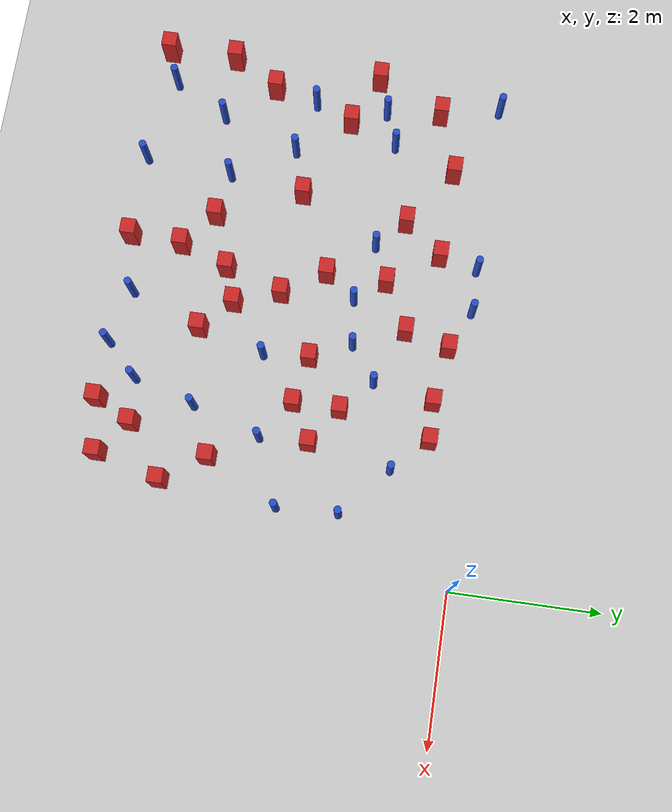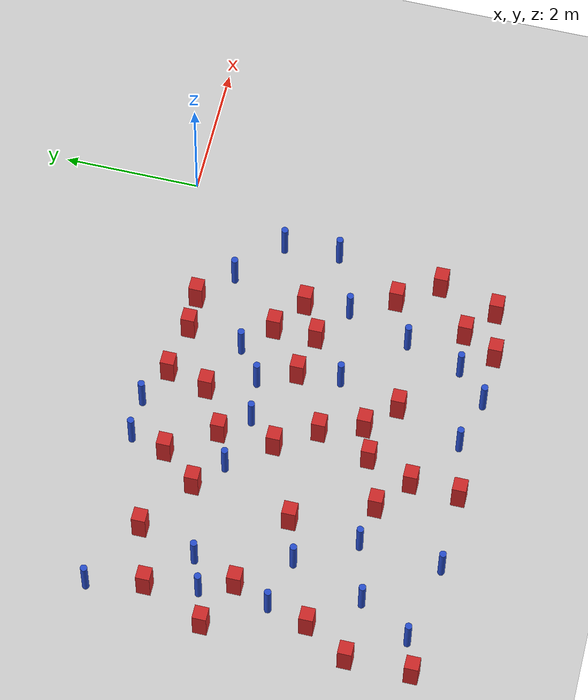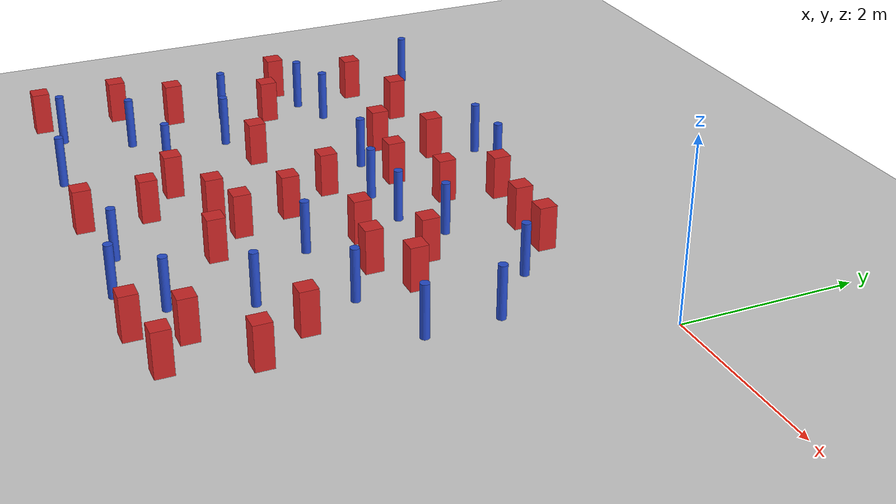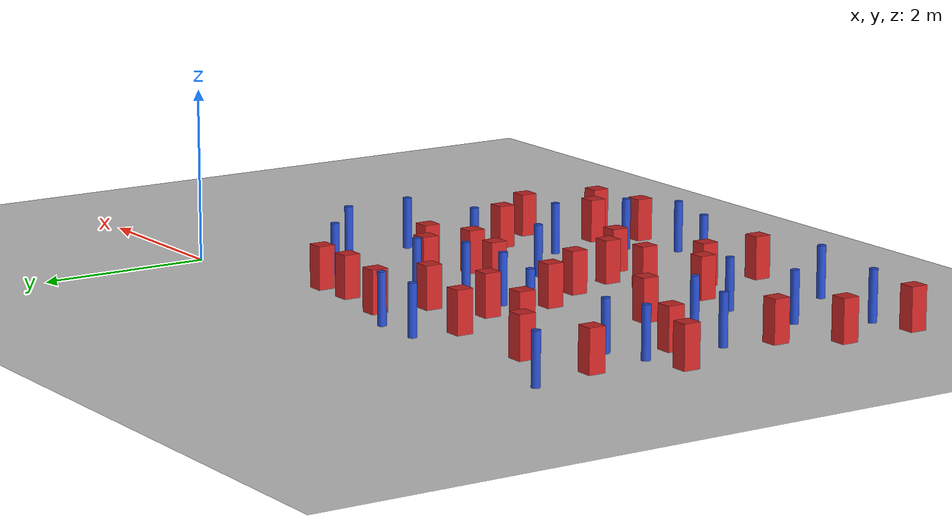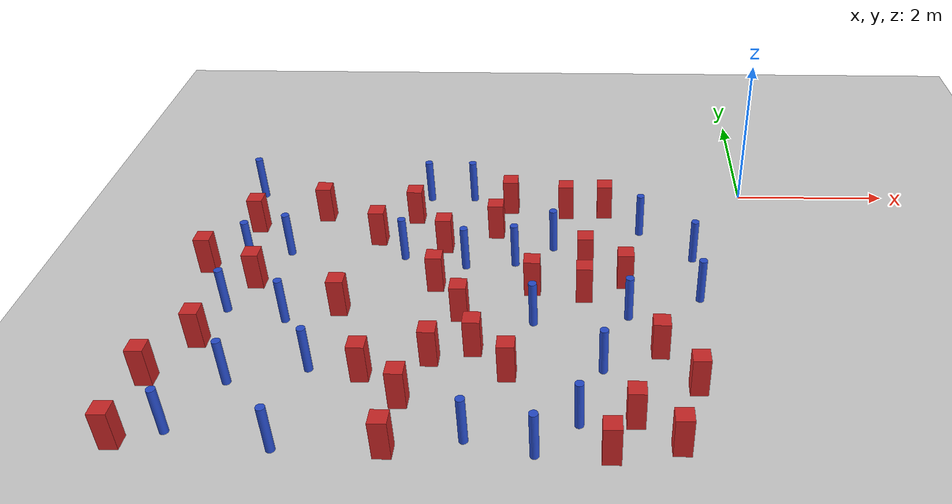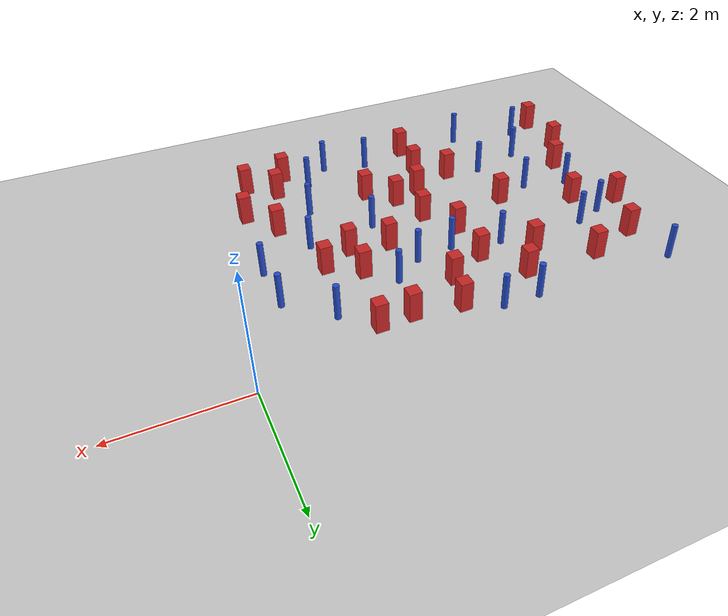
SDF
<sdf version="1.6">
 <world name="default">
  <model name="ground_plane">
   <static>1</static>
   <link name="link">
    <collision name="collision">
     <geometry><plane><normal>0 0 1</normal><size>100 100</size></plane></geometry>
     <surface><friction><ode><mu>100</mu><mu2>50</mu2></ode></friction></surface>
    </collision>
    <visual name="visual">
     <cast_shadows>0</cast_shadows>
     <geometry><plane><normal>0 0 1</normal><size>100 100</size></plane></geometry>
     <material>
      <ambient>1.0 1.0 1.0 1.0</ambient>
      <diffuse>0.8 0.8 0.8 1.0</diffuse>
      <specular>0.01 0.01 0.01 1.000000</specular>
     </material>
    </visual>
   </link>
  </model>
  <model name="pole_obstacle7">
   <static>true</static>
   <pose>-6.45998236298 -2.63384797095 7.38925637345e-09 -8.47170692798e-08 1.24976764937e-08 -1.74513093023e-07</pose>
   <link name="link">
    <pose>0 0 0.3 0 -0 0</pose>
    <inertial>
     <mass>1</mass>
     <inertia><ixx>0.145833</ixx><ixy>0</ixy><ixz>0</ixz><iyy>0.145833</iyy><iyz>0</iyz><izz>0.125</izz></inertia>
    </inertial>
    <collision name="collision">
     <geometry><cylinder><radius>0.05</radius><length>.6</length></cylinder></geometry>
    </collision>
    <visual name="visual">
     <geometry><cylinder><radius>0.05</radius><length>.6</length></cylinder></geometry>
     <material>
      <script><name>Gazebo/Blue</name><uri>file://media/materials/scripts/gazebo.material</uri></script>
     </material>
    </visual>
   </link>
  </model>
  <model name="square_post_obstacle16">
   <static>true</static>
   <pose>-2.15949539895 -1.69913952789 1.91545236811e-07 -7.35059704564e-06 1.12565212e-07 2.39332434364e-05</pose>
   <link name="link">
    <pose>0 0 0.25 0 -0 0</pose>
    <inertial>
     <mass>100</mass>
     <inertia>
      <ixx>0.166667</ixx>
      <ixy>0</ixy>
      <ixz>0</ixz>
      <iyy>0.166667</iyy>
      <iyz>0</iyz>
      <izz>0.166667</izz>
     </inertia>
    </inertial>
    <collision name="collision"><geometry><box><size>.2 .2 .5</size></box></geometry></collision>
    <visual name="visual">
     <geometry><box><size>.2 .2 .5</size></box></geometry>
     <material>
      <script><name>Gazebo/Red</name><uri>file://media/materials/scripts/gazebo.material</uri></script>
     </material>
    </visual>
   </link>
  </model>
  <model name="square_post_obstacle17">
   <static>true</static>
   <pose>-1.90918752012 -0.480530397075 1.91545236811e-07 -7.35059704564e-06 1.12565212e-07 2.39332434364e-05</pose>
   <link name="link">
    <pose>0 0 0.25 0 -0 0</pose>
    <inertial>
     <mass>100</mass>
     <inertia>
      <ixx>0.166667</ixx>
      <ixy>0</ixy>
      <ixz>0</ixz>
      <iyy>0.166667</iyy>
      <iyz>0</iyz>
      <izz>0.166667</izz>
     </inertia>
    </inertial>
    <collision name="collision"><geometry><box><size>.2 .2 .5</size></box></geometry></collision>
    <visual name="visual">
     <geometry><box><size>.2 .2 .5</size></box></geometry>
     <material>
      <script><name>Gazebo/Red</name><uri>file://media/materials/scripts/gazebo.material</uri></script>
     </material>
    </visual>
   </link>
  </model>
  <model name="square_post_obstacle21">
   <static>true</static>
   <pose>-5.09705463556 -2.62253193798 1.91545236811e-07 -7.35059704564e-06 1.12565212e-07 2.39332434364e-05</pose>
   <link name="link">
    <pose>0 0 0.25 0 -0 0</pose>
    <inertial>
     <mass>100</mass>
     <inertia>
      <ixx>0.166667</ixx>
      <ixy>0</ixy>
      <ixz>0</ixz>
      <iyy>0.166667</iyy>
      <iyz>0</iyz>
      <izz>0.166667</izz>
     </inertia>
    </inertial>
    <collision name="collision"><geometry><box><size>.2 .2 .5</size></box></geometry></collision>
    <visual name="visual">
     <geometry><box><size>.2 .2 .5</size></box></geometry>
     <material>
      <script><name>Gazebo/Red</name><uri>file://media/materials/scripts/gazebo.material</uri></script>
     </material>
    </visual>
   </link>
  </model>
  <model name="pole_obstacle13">
   <static>true</static>
   <pose>-5.97737935329 -1.46511551683 7.38925637345e-09 -8.471706928e-08 1.24976765134e-08 -1.74513093015e-07</pose>
   <link name="link">
    <pose>0 0 0.3 0 -0 0</pose>
    <inertial>
     <mass>1</mass>
     <inertia><ixx>0.145833</ixx><ixy>0</ixy><ixz>0</ixz><iyy>0.145833</iyy><iyz>0</iyz><izz>0.125</izz></inertia>
    </inertial>
    <collision name="collision">
     <geometry><cylinder><radius>0.05</radius><length>.6</length></cylinder></geometry>
    </collision>
    <visual name="visual">
     <geometry><cylinder><radius>0.05</radius><length>.6</length></cylinder></geometry>
     <material>
      <script><name>Gazebo/Blue</name><uri>file://media/materials/scripts/gazebo.material</uri></script>
     </material>
    </visual>
   </link>
  </model>
  <model name="square_post_obstacle33">
   <static>true</static>
   <pose>-4.14429229672 -4.14758495658 1.91545236811e-07 -7.35059704564e-06 1.12565212e-07 2.39332434364e-05</pose>
   <link name="link">
    <pose>0 0 0.25 0 -0 0</pose>
    <inertial>
     <mass>100</mass>
     <inertia>
      <ixx>0.166667</ixx>
      <ixy>0</ixy>
      <ixz>0</ixz>
      <iyy>0.166667</iyy>
      <iyz>0</iyz>
      <izz>0.166667</izz>
     </inertia>
    </inertial>
    <collision name="collision"><geometry><box><size>.2 .2 .5</size></box></geometry></collision>
    <visual name="visual">
     <geometry><box><size>.2 .2 .5</size></box></geometry>
     <material>
      <script><name>Gazebo/Red</name><uri>file://media/materials/scripts/gazebo.material</uri></script>
     </material>
    </visual>
   </link>
  </model>
  <model name="square_post_obstacle35">
   <static>true</static>
   <pose>-3.89950601261 -3.4865232164 1.91545236811e-07 -7.35059704564e-06 1.12565212e-07 2.39332434364e-05</pose>
   <link name="link">
    <pose>0 0 0.25 0 -0 0</pose>
    <inertial>
     <mass>100</mass>
     <inertia>
      <ixx>0.166667</ixx>
      <ixy>0</ixy>
      <ixz>0</ixz>
      <iyy>0.166667</iyy>
      <iyz>0</iyz>
      <izz>0.166667</izz>
     </inertia>
    </inertial>
    <collision name="collision"><geometry><box><size>.2 .2 .5</size></box></geometry></collision>
    <visual name="visual">
     <geometry><box><size>.2 .2 .5</size></box></geometry>
     <material>
      <script><name>Gazebo/Red</name><uri>file://media/materials/scripts/gazebo.material</uri></script>
     </material>
    </visual>
   </link>
  </model>
  <model name="square_post_obstacle36">
   <static>true</static>
   <pose>-3.42522177308 -3.32000032332 1.91545236811e-07 -7.35059704564e-06 1.12565212e-07 2.39332434364e-05</pose>
   <link name="link">
    <pose>0 0 0.25 0 -0 0</pose>
    <inertial>
     <mass>100</mass>
     <inertia>
      <ixx>0.166667</ixx>
      <ixy>0</ixy>
      <ixz>0</ixz>
      <iyy>0.166667</iyy>
      <iyz>0</iyz>
      <izz>0.166667</izz>
     </inertia>
    </inertial>
    <collision name="collision"><geometry><box><size>.2 .2 .5</size></box></geometry></collision>
    <visual name="visual">
     <geometry><box><size>.2 .2 .5</size></box></geometry>
     <material>
      <script><name>Gazebo/Red</name><uri>file://media/materials/scripts/gazebo.material</uri></script>
     </material>
    </visual>
   </link>
  </model>
  <model name="pole_obstacle41">
   <static>true</static>
   <pose>-4.48478164764 -1.5348858598 7.38925637345e-09 -8.471706928e-08 1.24976765134e-08 -1.74513093015e-07</pose>
   <link name="link">
    <pose>0 0 0.3 0 -0 0</pose>
    <inertial>
     <mass>1</mass>
     <inertia><ixx>0.145833</ixx><ixy>0</ixy><ixz>0</ixz><iyy>0.145833</iyy><iyz>0</iyz><izz>0.125</izz></inertia>
    </inertial>
    <collision name="collision">
     <geometry><cylinder><radius>0.05</radius><length>.6</length></cylinder></geometry>
    </collision>
    <visual name="visual">
     <geometry><cylinder><radius>0.05</radius><length>.6</length></cylinder></geometry>
     <material>
      <script><name>Gazebo/Blue</name><uri>file://media/materials/scripts/gazebo.material</uri></script>
     </material>
    </visual>
   </link>
  </model>
  <model name="square_post_obstacle44">
   <static>true</static>
   <pose>-3.34190263093 -0.980023053363 1.91545236811e-07 -7.35059704564e-06 1.12565212e-07 2.39332434364e-05</pose>
   <link name="link">
    <pose>0 0 0.25 0 -0 0</pose>
    <inertial>
     <mass>100</mass>
     <inertia>
      <ixx>0.166667</ixx>
      <ixy>0</ixy>
      <ixz>0</ixz>
      <iyy>0.166667</iyy>
      <iyz>0</iyz>
      <izz>0.166667</izz>
     </inertia>
    </inertial>
    <collision name="collision"><geometry><box><size>.2 .2 .5</size></box></geometry></collision>
    <visual name="visual">
     <geometry><box><size>.2 .2 .5</size></box></geometry>
     <material>
      <script><name>Gazebo/Red</name><uri>file://media/materials/scripts/gazebo.material</uri></script>
     </material>
    </visual>
   </link>
  </model>
  <model name="square_post_obstacle61">
   <static>true</static>
   <pose>-3.01279817434 -3.72109562142 1.91545236811e-07 -7.35059704564e-06 1.12565212e-07 2.39332434364e-05</pose>
   <link name="link">
    <pose>0 0 0.25 0 -0 0</pose>
    <inertial>
     <mass>100</mass>
     <inertia>
      <ixx>0.166667</ixx>
      <ixy>0</ixy>
      <ixz>0</ixz>
      <iyy>0.166667</iyy>
      <iyz>0</iyz>
      <izz>0.166667</izz>
     </inertia>
    </inertial>
    <collision name="collision"><geometry><box><size>.2 .2 .5</size></box></geometry></collision>
    <visual name="visual">
     <geometry><box><size>.2 .2 .5</size></box></geometry>
     <material>
      <script><name>Gazebo/Red</name><uri>file://media/materials/scripts/gazebo.material</uri></script>
     </material>
    </visual>
   </link>
  </model>
  <model name="square_post_obstacle65">
   <static>true</static>
   <pose>-2.80540051822 -2.19797710845 1.91545236811e-07 -7.35059704564e-06 1.12565212e-07 2.39332434364e-05</pose>
   <link name="link">
    <pose>0 0 0.25 0 -0 0</pose>
    <inertial>
     <mass>100</mass>
     <inertia>
      <ixx>0.166667</ixx>
      <ixy>0</ixy>
      <ixz>0</ixz>
      <iyy>0.166667</iyy>
      <iyz>0</iyz>
      <izz>0.166667</izz>
     </inertia>
    </inertial>
    <collision name="collision"><geometry><box><size>.2 .2 .5</size></box></geometry></collision>
    <visual name="visual">
     <geometry><box><size>.2 .2 .5</size></box></geometry>
     <material>
      <script><name>Gazebo/Red</name><uri>file://media/materials/scripts/gazebo.material</uri></script>
     </material>
    </visual>
   </link>
  </model>
  <model name="pole_obstacle65">
   <static>true</static>
   <pose>-2.20553899418 -4.45294340732 7.38925637345e-09 -8.47170692798e-08 1.24976765033e-08 -1.74513093019e-07</pose>
   <link name="link">
    <pose>0 0 0.3 0 -0 0</pose>
    <inertial>
     <mass>1</mass>
     <inertia><ixx>0.145833</ixx><ixy>0</ixy><ixz>0</ixz><iyy>0.145833</iyy><iyz>0</iyz><izz>0.125</izz></inertia>
    </inertial>
    <collision name="collision">
     <geometry><cylinder><radius>0.05</radius><length>.6</length></cylinder></geometry>
    </collision>
    <visual name="visual">
     <geometry><cylinder><radius>0.05</radius><length>.6</length></cylinder></geometry>
     <material>
      <script><name>Gazebo/Blue</name><uri>file://media/materials/scripts/gazebo.material</uri></script>
     </material>
    </visual>
   </link>
  </model>
  <model name="square_post_obstacle69">
   <static>true</static>
   <pose>-4.87586924858 -1.16649031206 1.91545236811e-07 -7.35059704564e-06 1.12565212e-07 2.39332434364e-05</pose>
   <link name="link">
    <pose>0 0 0.25 0 -0 0</pose>
    <inertial>
     <mass>100</mass>
     <inertia>
      <ixx>0.166667</ixx>
      <ixy>0</ixy>
      <ixz>0</ixz>
      <iyy>0.166667</iyy>
      <iyz>0</iyz>
      <izz>0.166667</izz>
     </inertia>
    </inertial>
    <collision name="collision"><geometry><box><size>.2 .2 .5</size></box></geometry></collision>
    <visual name="visual">
     <geometry><box><size>.2 .2 .5</size></box></geometry>
     <material>
      <script><name>Gazebo/Red</name><uri>file://media/materials/scripts/gazebo.material</uri></script>
     </material>
    </visual>
   </link>
  </model>
  <model name="pole_obstacle67">
   <static>true</static>
   <pose>-1.94734381982 -3.62467580021 7.38925637345e-09 -8.47170692799e-08 1.24976765053e-08 -1.74513093017e-07</pose>
   <link name="link">
    <pose>0 0 0.3 0 -0 0</pose>
    <inertial>
     <mass>1</mass>
     <inertia><ixx>0.145833</ixx><ixy>0</ixy><ixz>0</ixz><iyy>0.145833</iyy><iyz>0</iyz><izz>0.125</izz></inertia>
    </inertial>
    <collision name="collision">
     <geometry><cylinder><radius>0.05</radius><length>.6</length></cylinder></geometry>
    </collision>
    <visual name="visual">
     <geometry><cylinder><radius>0.05</radius><length>.6</length></cylinder></geometry>
     <material>
      <script><name>Gazebo/Blue</name><uri>file://media/materials/scripts/gazebo.material</uri></script>
     </material>
    </visual>
   </link>
  </model>
  <model name="pole_obstacle72">
   <static>true</static>
   <pose>-0.781662030216 -1.52261572432 7.38925637345e-09 -8.47170692799e-08 1.24976765033e-08 -1.7451309302e-07</pose>
   <link name="link">
    <pose>0 0 0.3 0 -0 0</pose>
    <inertial>
     <mass>1</mass>
     <inertia><ixx>0.145833</ixx><ixy>0</ixy><ixz>0</ixz><iyy>0.145833</iyy><iyz>0</iyz><izz>0.125</izz></inertia>
    </inertial>
    <collision name="collision">
     <geometry><cylinder><radius>0.05</radius><length>.6</length></cylinder></geometry>
    </collision>
    <visual name="visual">
     <geometry><cylinder><radius>0.05</radius><length>.6</length></cylinder></geometry>
     <material>
      <script><name>Gazebo/Blue</name><uri>file://media/materials/scripts/gazebo.material</uri></script>
     </material>
    </visual>
   </link>
  </model>
  <model name="pole_obstacle75">
   <static>true</static>
   <pose>-2.76590280646 -2.82017722251 7.38925637345e-09 -8.47170692798e-08 1.24976764939e-08 -1.74513093025e-07</pose>
   <link name="link">
    <pose>0 0 0.3 0 -0 0</pose>
    <inertial>
     <mass>1</mass>
     <inertia><ixx>0.145833</ixx><ixy>0</ixy><ixz>0</ixz><iyy>0.145833</iyy><iyz>0</iyz><izz>0.125</izz></inertia>
    </inertial>
    <collision name="collision">
     <geometry><cylinder><radius>0.05</radius><length>.6</length></cylinder></geometry>
    </collision>
    <visual name="visual">
     <geometry><cylinder><radius>0.05</radius><length>.6</length></cylinder></geometry>
     <material>
      <script><name>Gazebo/Blue</name><uri>file://media/materials/scripts/gazebo.material</uri></script>
     </material>
    </visual>
   </link>
  </model>
  <model name="pole_obstacle89">
   <static>true</static>
   <pose>-3.05377337233 -1.65280209204 7.38925637345e-09 -8.47170692796e-08 1.24976764713e-08 -1.74513093037e-07</pose>
   <link name="link">
    <pose>0 0 0.3 0 -0 0</pose>
    <inertial>
     <mass>1</mass>
     <inertia><ixx>0.145833</ixx><ixy>0</ixy><ixz>0</ixz><iyy>0.145833</iyy><iyz>0</iyz><izz>0.125</izz></inertia>
    </inertial>
    <collision name="collision">
     <geometry><cylinder><radius>0.05</radius><length>.6</length></cylinder></geometry>
    </collision>
    <visual name="visual">
     <geometry><cylinder><radius>0.05</radius><length>.6</length></cylinder></geometry>
     <material>
      <script><name>Gazebo/Blue</name><uri>file://media/materials/scripts/gazebo.material</uri></script>
     </material>
    </visual>
   </link>
  </model>
  <model name="pole_obstacle94">
   <static>true</static>
   <pose>-2.57612366003 -1.30722304666 7.38925637345e-09 -8.471706928e-08 1.24976765152e-08 -1.74513093012e-07</pose>
   <link name="link">
    <pose>0 0 0.3 0 -0 0</pose>
    <inertial>
     <mass>1</mass>
     <inertia><ixx>0.145833</ixx><ixy>0</ixy><ixz>0</ixz><iyy>0.145833</iyy><iyz>0</iyz><izz>0.125</izz></inertia>
    </inertial>
    <collision name="collision">
     <geometry><cylinder><radius>0.05</radius><length>.6</length></cylinder></geometry>
    </collision>
    <visual name="visual">
     <geometry><cylinder><radius>0.05</radius><length>.6</length></cylinder></geometry>
     <material>
      <script><name>Gazebo/Blue</name><uri>file://media/materials/scripts/gazebo.material</uri></script>
     </material>
    </visual>
   </link>
  </model>
  <model name="square_post_obstacle91">
   <static>true</static>
   <pose>-6.23968246145 -2.11465963152 1.91545236811e-07 -7.35059704564e-06 1.12565212e-07 2.39332434364e-05</pose>
   <link name="link">
    <pose>0 0 0.25 0 -0 0</pose>
    <inertial>
     <mass>100</mass>
     <inertia>
      <ixx>0.166667</ixx>
      <ixy>0</ixy>
      <ixz>0</ixz>
      <iyy>0.166667</iyy>
      <iyz>0</iyz>
      <izz>0.166667</izz>
     </inertia>
    </inertial>
    <collision name="collision"><geometry><box><size>.2 .2 .5</size></box></geometry></collision>
    <visual name="visual">
     <geometry><box><size>.2 .2 .5</size></box></geometry>
     <material>
      <script><name>Gazebo/Red</name><uri>file://media/materials/scripts/gazebo.material</uri></script>
     </material>
    </visual>
   </link>
  </model>
  <model name="square_post_obstacle93">
   <static>true</static>
   <pose>-3.64405391513 -2.70833768609 1.91545236811e-07 -7.35059704564e-06 1.12565212e-07 2.39332434364e-05</pose>
   <link name="link">
    <pose>0 0 0.25 0 -0 0</pose>
    <inertial>
     <mass>100</mass>
     <inertia>
      <ixx>0.166667</ixx>
      <ixy>0</ixy>
      <ixz>0</ixz>
      <iyy>0.166667</iyy>
      <iyz>0</iyz>
      <izz>0.166667</izz>
     </inertia>
    </inertial>
    <collision name="collision"><geometry><box><size>.2 .2 .5</size></box></geometry></collision>
    <visual name="visual">
     <geometry><box><size>.2 .2 .5</size></box></geometry>
     <material>
      <script><name>Gazebo/Red</name><uri>file://media/materials/scripts/gazebo.material</uri></script>
     </material>
    </visual>
   </link>
  </model>
  <model name="pole_obstacle105">
   <static>true</static>
   <pose>-6.08582076137 -3.87871836461 7.38925637345e-09 -8.47170692798e-08 1.24976764937e-08 -1.74513093023e-07</pose>
   <link name="link">
    <pose>0 0 0.3 0 -0 0</pose>
    <inertial>
     <mass>1</mass>
     <inertia><ixx>0.145833</ixx><ixy>0</ixy><ixz>0</ixz><iyy>0.145833</iyy><iyz>0</iyz><izz>0.125</izz></inertia>
    </inertial>
    <collision name="collision">
     <geometry><cylinder><radius>0.05</radius><length>.6</length></cylinder></geometry>
    </collision>
    <visual name="visual">
     <geometry><cylinder><radius>0.05</radius><length>.6</length></cylinder></geometry>
     <material>
      <script><name>Gazebo/Blue</name><uri>file://media/materials/scripts/gazebo.material</uri></script>
     </material>
    </visual>
   </link>
  </model>
  <model name="pole_obstacle113">
   <static>true</static>
   <pose>-1.44393708808 -0.933068850458 7.38925637345e-09 -8.47170692799e-08 1.24976765075e-08 -1.74513093017e-07</pose>
   <link name="link">
    <pose>0 0 0.3 0 -0 0</pose>
    <inertial>
     <mass>1</mass>
     <inertia><ixx>0.145833</ixx><ixy>0</ixy><ixz>0</ixz><iyy>0.145833</iyy><iyz>0</iyz><izz>0.125</izz></inertia>
    </inertial>
    <collision name="collision">
     <geometry><cylinder><radius>0.05</radius><length>.6</length></cylinder></geometry>
    </collision>
    <visual name="visual">
     <geometry><cylinder><radius>0.05</radius><length>.6</length></cylinder></geometry>
     <material>
      <script><name>Gazebo/Blue</name><uri>file://media/materials/scripts/gazebo.material</uri></script>
     </material>
    </visual>
   </link>
  </model>
  <model name="pole_obstacle116">
   <static>true</static>
   <pose>-4.32828270414 -0.132114267548 7.38925637345e-09 -8.471706928e-08 1.24976765188e-08 -1.74513093011e-07</pose>
   <link name="link">
    <pose>0 0 0.3 0 -0 0</pose>
    <inertial>
     <mass>1</mass>
     <inertia><ixx>0.145833</ixx><ixy>0</ixy><ixz>0</ixz><iyy>0.145833</iyy><iyz>0</iyz><izz>0.125</izz></inertia>
    </inertial>
    <collision name="collision">
     <geometry><cylinder><radius>0.05</radius><length>.6</length></cylinder></geometry>
    </collision>
    <visual name="visual">
     <geometry><cylinder><radius>0.05</radius><length>.6</length></cylinder></geometry>
     <material>
      <script><name>Gazebo/Blue</name><uri>file://media/materials/scripts/gazebo.material</uri></script>
     </material>
    </visual>
   </link>
  </model>
  <model name="square_post_obstacle106">
   <static>true</static>
   <pose>-6.97650568693 -3.85001583036 1.91545236811e-07 -7.35059704564e-06 1.12565212e-07 2.39332434364e-05</pose>
   <link name="link">
    <pose>0 0 0.25 0 -0 0</pose>
    <inertial>
     <mass>100</mass>
     <inertia>
      <ixx>0.166667</ixx>
      <ixy>0</ixy>
      <ixz>0</ixz>
      <iyy>0.166667</iyy>
      <iyz>0</iyz>
      <izz>0.166667</izz>
     </inertia>
    </inertial>
    <collision name="collision"><geometry><box><size>.2 .2 .5</size></box></geometry></collision>
    <visual name="visual">
     <geometry><box><size>.2 .2 .5</size></box></geometry>
     <material>
      <script><name>Gazebo/Red</name><uri>file://media/materials/scripts/gazebo.material</uri></script>
     </material>
    </visual>
   </link>
  </model>
  <model name="square_post_obstacle108">
   <static>true</static>
   <pose>-4.18655320627 -4.85466881689 1.91545236811e-07 -7.35059704564e-06 1.12565212e-07 2.39332434364e-05</pose>
   <link name="link">
    <pose>0 0 0.25 0 -0 0</pose>
    <inertial>
     <mass>100</mass>
     <inertia>
      <ixx>0.166667</ixx>
      <ixy>0</ixy>
      <ixz>0</ixz>
      <iyy>0.166667</iyy>
      <iyz>0</iyz>
      <izz>0.166667</izz>
     </inertia>
    </inertial>
    <collision name="collision"><geometry><box><size>.2 .2 .5</size></box></geometry></collision>
    <visual name="visual">
     <geometry><box><size>.2 .2 .5</size></box></geometry>
     <material>
      <script><name>Gazebo/Red</name><uri>file://media/materials/scripts/gazebo.material</uri></script>
     </material>
    </visual>
   </link>
  </model>
  <model name="square_post_obstacle113">
   <static>true</static>
   <pose>-6.60482771985 -3.22343169616 1.91545236811e-07 -7.35059704564e-06 1.12565212e-07 2.39332434364e-05</pose>
   <link name="link">
    <pose>0 0 0.25 0 -0 0</pose>
    <inertial>
     <mass>100</mass>
     <inertia>
      <ixx>0.166667</ixx>
      <ixy>0</ixy>
      <ixz>0</ixz>
      <iyy>0.166667</iyy>
      <iyz>0</iyz>
      <izz>0.166667</izz>
     </inertia>
    </inertial>
    <collision name="collision"><geometry><box><size>.2 .2 .5</size></box></geometry></collision>
    <visual name="visual">
     <geometry><box><size>.2 .2 .5</size></box></geometry>
     <material>
      <script><name>Gazebo/Red</name><uri>file://media/materials/scripts/gazebo.material</uri></script>
     </material>
    </visual>
   </link>
  </model>
  <model name="pole_obstacle131">
   <static>true</static>
   <pose>-3.39124593918 -4.69166718756 7.38925637345e-09 -8.47170692798e-08 1.24976765033e-08 -1.74513093019e-07</pose>
   <link name="link">
    <pose>0 0 0.3 0 -0 0</pose>
    <inertial>
     <mass>1</mass>
     <inertia><ixx>0.145833</ixx><ixy>0</ixy><ixz>0</ixz><iyy>0.145833</iyy><iyz>0</iyz><izz>0.125</izz></inertia>
    </inertial>
    <collision name="collision">
     <geometry><cylinder><radius>0.05</radius><length>.6</length></cylinder></geometry>
    </collision>
    <visual name="visual">
     <geometry><cylinder><radius>0.05</radius><length>.6</length></cylinder></geometry>
     <material>
      <script><name>Gazebo/Blue</name><uri>file://media/materials/scripts/gazebo.material</uri></script>
     </material>
    </visual>
   </link>
  </model>
  <model name="square_post_obstacle115">
   <static>true</static>
   <pose>-3.18573908843 -0.383768711905 1.91545236811e-07 -7.35059704564e-06 1.12565212e-07 2.39332434364e-05</pose>
   <link name="link">
    <pose>0 0 0.25 0 -0 0</pose>
    <inertial>
     <mass>100</mass>
     <inertia>
      <ixx>0.166667</ixx>
      <ixy>0</ixy>
      <ixz>0</ixz>
      <iyy>0.166667</iyy>
      <iyz>0</iyz>
      <izz>0.166667</izz>
     </inertia>
    </inertial>
    <collision name="collision"><geometry><box><size>.2 .2 .5</size></box></geometry></collision>
    <visual name="visual">
     <geometry><box><size>.2 .2 .5</size></box></geometry>
     <material>
      <script><name>Gazebo/Red</name><uri>file://media/materials/scripts/gazebo.material</uri></script>
     </material>
    </visual>
   </link>
  </model>
  <model name="square_post_obstacle123">
   <static>true</static>
   <pose>-1.66463374413 -2.04206036508 1.91545236811e-07 -7.35059704564e-06 1.12565212e-07 2.39332434364e-05</pose>
   <link name="link">
    <pose>0 0 0.25 0 -0 0</pose>
    <inertial>
     <mass>100</mass>
     <inertia>
      <ixx>0.166667</ixx>
      <ixy>0</ixy>
      <ixz>0</ixz>
      <iyy>0.166667</iyy>
      <iyz>0</iyz>
      <izz>0.166667</izz>
     </inertia>
    </inertial>
    <collision name="collision"><geometry><box><size>.2 .2 .5</size></box></geometry></collision>
    <visual name="visual">
     <geometry><box><size>.2 .2 .5</size></box></geometry>
     <material>
      <script><name>Gazebo/Red</name><uri>file://media/materials/scripts/gazebo.material</uri></script>
     </material>
    </visual>
   </link>
  </model>
  <model name="square_post_obstacle131">
   <static>true</static>
   <pose>-6.5312552184 -0.896312105046 1.91545236811e-07 -7.35059704564e-06 1.12565212e-07 2.39332434364e-05</pose>
   <link name="link">
    <pose>0 0 0.25 0 -0 0</pose>
    <inertial>
     <mass>100</mass>
     <inertia>
      <ixx>0.166667</ixx>
      <ixy>0</ixy>
      <ixz>0</ixz>
      <iyy>0.166667</iyy>
      <iyz>0</iyz>
      <izz>0.166667</izz>
     </inertia>
    </inertial>
    <collision name="collision"><geometry><box><size>.2 .2 .5</size></box></geometry></collision>
    <visual name="visual">
     <geometry><box><size>.2 .2 .5</size></box></geometry>
     <material>
      <script><name>Gazebo/Red</name><uri>file://media/materials/scripts/gazebo.material</uri></script>
     </material>
    </visual>
   </link>
  </model>
  <model name="square_post_obstacle134">
   <static>true</static>
   <pose>-4.00281047853 -2.13623397249 1.91545236811e-07 -7.35059704564e-06 1.12565212e-07 2.39332434364e-05</pose>
   <link name="link">
    <pose>0 0 0.25 0 -0 0</pose>
    <inertial>
     <mass>100</mass>
     <inertia>
      <ixx>0.166667</ixx>
      <ixy>0</ixy>
      <ixz>0</ixz>
      <iyy>0.166667</iyy>
      <iyz>0</iyz>
      <izz>0.166667</izz>
     </inertia>
    </inertial>
    <collision name="collision"><geometry><box><size>.2 .2 .5</size></box></geometry></collision>
    <visual name="visual">
     <geometry><box><size>.2 .2 .5</size></box></geometry>
     <material>
      <script><name>Gazebo/Red</name><uri>file://media/materials/scripts/gazebo.material</uri></script>
     </material>
    </visual>
   </link>
  </model>
  <model name="pole_obstacle145">
   <static>true</static>
   <pose>-6.50570464822 -4.61765814734 7.38925637345e-09 -8.47170692796e-08 1.24976764786e-08 -1.74513093032e-07</pose>
   <link name="link">
    <pose>0 0 0.3 0 -0 0</pose>
    <inertial>
     <mass>1</mass>
     <inertia><ixx>0.145833</ixx><ixy>0</ixy><ixz>0</ixz><iyy>0.145833</iyy><iyz>0</iyz><izz>0.125</izz></inertia>
    </inertial>
    <collision name="collision">
     <geometry><cylinder><radius>0.05</radius><length>.6</length></cylinder></geometry>
    </collision>
    <visual name="visual">
     <geometry><cylinder><radius>0.05</radius><length>.6</length></cylinder></geometry>
     <material>
      <script><name>Gazebo/Blue</name><uri>file://media/materials/scripts/gazebo.material</uri></script>
     </material>
    </visual>
   </link>
  </model>
  <model name="square_post_obstacle137">
   <static>true</static>
   <pose>-0.913217605786 -3.89809666056 1.91545236811e-07 -7.35059704564e-06 1.12565212e-07 2.39332434364e-05</pose>
   <link name="link">
    <pose>0 0 0.25 0 -0 0</pose>
    <inertial>
     <mass>100</mass>
     <inertia>
      <ixx>0.166667</ixx>
      <ixy>0</ixy>
      <ixz>0</ixz>
      <iyy>0.166667</iyy>
      <iyz>0</iyz>
      <izz>0.166667</izz>
     </inertia>
    </inertial>
    <collision name="collision"><geometry><box><size>.2 .2 .5</size></box></geometry></collision>
    <visual name="visual">
     <geometry><box><size>.2 .2 .5</size></box></geometry>
     <material>
      <script><name>Gazebo/Red</name><uri>file://media/materials/scripts/gazebo.material</uri></script>
     </material>
    </visual>
   </link>
  </model>
  <model name="square_post_obstacle140">
   <static>true</static>
   <pose>-6.93286535953 -1.80077780749 1.91545236811e-07 -7.35059704564e-06 1.12565212e-07 2.39332434364e-05</pose>
   <link name="link">
    <pose>0 0 0.25 0 -0 0</pose>
    <inertial>
     <mass>100</mass>
     <inertia>
      <ixx>0.166667</ixx>
      <ixy>0</ixy>
      <ixz>0</ixz>
      <iyy>0.166667</iyy>
      <iyz>0</iyz>
      <izz>0.166667</izz>
     </inertia>
    </inertial>
    <collision name="collision"><geometry><box><size>.2 .2 .5</size></box></geometry></collision>
    <visual name="visual">
     <geometry><box><size>.2 .2 .5</size></box></geometry>
     <material>
      <script><name>Gazebo/Red</name><uri>file://media/materials/scripts/gazebo.material</uri></script>
     </material>
    </visual>
   </link>
  </model>
  <model name="pole_obstacle150">
   <static>true</static>
   <pose>-5.23409153721 -3.6563391317 7.38925637345e-09 -8.47170692798e-08 1.24976764937e-08 -1.74513093023e-07</pose>
   <link name="link">
    <pose>0 0 0.3 0 -0 0</pose>
    <inertial>
     <mass>1</mass>
     <inertia><ixx>0.145833</ixx><ixy>0</ixy><ixz>0</ixz><iyy>0.145833</iyy><iyz>0</iyz><izz>0.125</izz></inertia>
    </inertial>
    <collision name="collision">
     <geometry><cylinder><radius>0.05</radius><length>.6</length></cylinder></geometry>
    </collision>
    <visual name="visual">
     <geometry><cylinder><radius>0.05</radius><length>.6</length></cylinder></geometry>
     <material>
      <script><name>Gazebo/Blue</name><uri>file://media/materials/scripts/gazebo.material</uri></script>
     </material>
    </visual>
   </link>
  </model>
  <model name="square_post_obstacle152">
   <static>true</static>
   <pose>-1.29797291856 -3.32132765791 1.91545236811e-07 -7.35059704564e-06 1.12565212e-07 2.39332434364e-05</pose>
   <link name="link">
    <pose>0 0 0.25 0 -0 0</pose>
    <inertial>
     <mass>100</mass>
     <inertia>
      <ixx>0.166667</ixx>
      <ixy>0</ixy>
      <ixz>0</ixz>
      <iyy>0.166667</iyy>
      <iyz>0</iyz>
      <izz>0.166667</izz>
     </inertia>
    </inertial>
    <collision name="collision"><geometry><box><size>.2 .2 .5</size></box></geometry></collision>
    <visual name="visual">
     <geometry><box><size>.2 .2 .5</size></box></geometry>
     <material>
      <script><name>Gazebo/Red</name><uri>file://media/materials/scripts/gazebo.material</uri></script>
     </material>
    </visual>
   </link>
  </model>
  <model name="square_post_obstacle153">
   <static>true</static>
   <pose>-1.16018598613 -4.76720969735 1.91545236811e-07 -7.35059704564e-06 1.12565212e-07 2.39332434364e-05</pose>
   <link name="link">
    <pose>0 0 0.25 0 -0 0</pose>
    <inertial>
     <mass>100</mass>
     <inertia>
      <ixx>0.166667</ixx>
      <ixy>0</ixy>
      <ixz>0</ixz>
      <iyy>0.166667</iyy>
      <iyz>0</iyz>
      <izz>0.166667</izz>
     </inertia>
    </inertial>
    <collision name="collision"><geometry><box><size>.2 .2 .5</size></box></geometry></collision>
    <visual name="visual">
     <geometry><box><size>.2 .2 .5</size></box></geometry>
     <material>
      <script><name>Gazebo/Red</name><uri>file://media/materials/scripts/gazebo.material</uri></script>
     </material>
    </visual>
   </link>
  </model>
  <model name="pole_obstacle162">
   <static>true</static>
   <pose>-6.44865622457 -1.64085587768 7.38925637345e-09 -8.471706928e-08 1.24976765134e-08 -1.74513093015e-07</pose>
   <link name="link">
    <pose>0 0 0.3 0 -0 0</pose>
    <inertial>
     <mass>1</mass>
     <inertia><ixx>0.145833</ixx><ixy>0</ixy><ixz>0</ixz><iyy>0.145833</iyy><iyz>0</iyz><izz>0.125</izz></inertia>
    </inertial>
    <collision name="collision">
     <geometry><cylinder><radius>0.05</radius><length>.6</length></cylinder></geometry>
    </collision>
    <visual name="visual">
     <geometry><cylinder><radius>0.05</radius><length>.6</length></cylinder></geometry>
     <material>
      <script><name>Gazebo/Blue</name><uri>file://media/materials/scripts/gazebo.material</uri></script>
     </material>
    </visual>
   </link>
  </model>
  <model name="square_post_obstacle157">
   <static>true</static>
   <pose>-4.45265751857 -0.653579027499 1.91545236811e-07 -7.35059704564e-06 1.12565212e-07 2.39332434364e-05</pose>
   <link name="link">
    <pose>0 0 0.25 0 -0 0</pose>
    <inertial>
     <mass>100</mass>
     <inertia>
      <ixx>0.166667</ixx>
      <ixy>0</ixy>
      <ixz>0</ixz>
      <iyy>0.166667</iyy>
      <iyz>0</iyz>
      <izz>0.166667</izz>
     </inertia>
    </inertial>
    <collision name="collision"><geometry><box><size>.2 .2 .5</size></box></geometry></collision>
    <visual name="visual">
     <geometry><box><size>.2 .2 .5</size></box></geometry>
     <material>
      <script><name>Gazebo/Red</name><uri>file://media/materials/scripts/gazebo.material</uri></script>
     </material>
    </visual>
   </link>
  </model>
  <model name="pole_obstacle164">
   <static>true</static>
   <pose>-0.755786723855 -2.34120595203 7.38925637345e-09 -8.47170692799e-08 1.2497676509e-08 -1.74513093016e-07</pose>
   <link name="link">
    <pose>0 0 0.3 0 -0 0</pose>
    <inertial>
     <mass>1</mass>
     <inertia><ixx>0.145833</ixx><ixy>0</ixy><ixz>0</ixz><iyy>0.145833</iyy><iyz>0</iyz><izz>0.125</izz></inertia>
    </inertial>
    <collision name="collision">
     <geometry><cylinder><radius>0.05</radius><length>.6</length></cylinder></geometry>
    </collision>
    <visual name="visual">
     <geometry><cylinder><radius>0.05</radius><length>.6</length></cylinder></geometry>
     <material>
      <script><name>Gazebo/Blue</name><uri>file://media/materials/scripts/gazebo.material</uri></script>
     </material>
    </visual>
   </link>
  </model>
  <model name="square_post_obstacle161">
   <static>true</static>
   <pose>-5.68390303003 -0.61395888088 1.91545236811e-07 -7.35059704564e-06 1.12565212e-07 2.39332434364e-05</pose>
   <link name="link">
    <pose>0 0 0.25 0 -0 0</pose>
    <inertial>
     <mass>100</mass>
     <inertia>
      <ixx>0.166667</ixx>
      <ixy>0</ixy>
      <ixz>0</ixz>
      <iyy>0.166667</iyy>
      <iyz>0</iyz>
      <izz>0.166667</izz>
     </inertia>
    </inertial>
    <collision name="collision"><geometry><box><size>.2 .2 .5</size></box></geometry></collision>
    <visual name="visual">
     <geometry><box><size>.2 .2 .5</size></box></geometry>
     <material>
      <script><name>Gazebo/Red</name><uri>file://media/materials/scripts/gazebo.material</uri></script>
     </material>
    </visual>
   </link>
  </model>
  <model name="square_post_obstacle163">
   <static>true</static>
   <pose>-1.61367016359 -4.40235433949 1.91545236811e-07 -7.35059704564e-06 1.12565212e-07 2.39332434364e-05</pose>
   <link name="link">
    <pose>0 0 0.25 0 -0 0</pose>
    <inertial>
     <mass>100</mass>
     <inertia>
      <ixx>0.166667</ixx>
      <ixy>0</ixy>
      <ixz>0</ixz>
      <iyy>0.166667</iyy>
      <iyz>0</iyz>
      <izz>0.166667</izz>
     </inertia>
    </inertial>
    <collision name="collision"><geometry><box><size>.2 .2 .5</size></box></geometry></collision>
    <visual name="visual">
     <geometry><box><size>.2 .2 .5</size></box></geometry>
     <material>
      <script><name>Gazebo/Red</name><uri>file://media/materials/scripts/gazebo.material</uri></script>
     </material>
    </visual>
   </link>
  </model>
  <model name="square_post_obstacle171">
   <static>true</static>
   <pose>-1.87485581551 -4.89312465562 1.91545236811e-07 -7.35059704564e-06 1.12565212e-07 2.39332434364e-05</pose>
   <link name="link">
    <pose>0 0 0.25 0 -0 0</pose>
    <inertial>
     <mass>100</mass>
     <inertia>
      <ixx>0.166667</ixx>
      <ixy>0</ixy>
      <ixz>0</ixz>
      <iyy>0.166667</iyy>
      <iyz>0</iyz>
      <izz>0.166667</izz>
     </inertia>
    </inertial>
    <collision name="collision"><geometry><box><size>.2 .2 .5</size></box></geometry></collision>
    <visual name="visual">
     <geometry><box><size>.2 .2 .5</size></box></geometry>
     <material>
      <script><name>Gazebo/Red</name><uri>file://media/materials/scripts/gazebo.material</uri></script>
     </material>
    </visual>
   </link>
  </model>
  <model name="pole_obstacle185">
   <static>true</static>
   <pose>-2.65164881002 -4.88101585859 7.38925637345e-09 -8.47170692798e-08 1.24976765033e-08 -1.74513093019e-07</pose>
   <link name="link">
    <pose>0 0 0.3 0 -0 0</pose>
    <inertial>
     <mass>1</mass>
     <inertia><ixx>0.145833</ixx><ixy>0</ixy><ixz>0</ixz><iyy>0.145833</iyy><iyz>0</iyz><izz>0.125</izz></inertia>
    </inertial>
    <collision name="collision">
     <geometry><cylinder><radius>0.05</radius><length>.6</length></cylinder></geometry>
    </collision>
    <visual name="visual">
     <geometry><cylinder><radius>0.05</radius><length>.6</length></cylinder></geometry>
     <material>
      <script><name>Gazebo/Blue</name><uri>file://media/materials/scripts/gazebo.material</uri></script>
     </material>
    </visual>
   </link>
  </model>
  <model name="square_post_obstacle175">
   <static>true</static>
   <pose>-3.98508924845 -1.32363783156 1.91545236811e-07 -7.35059704564e-06 1.12565212e-07 2.39332434364e-05</pose>
   <link name="link">
    <pose>0 0 0.25 0 -0 0</pose>
    <inertial>
     <mass>100</mass>
     <inertia>
      <ixx>0.166667</ixx>
      <ixy>0</ixy>
      <ixz>0</ixz>
      <iyy>0.166667</iyy>
      <iyz>0</iyz>
      <izz>0.166667</izz>
     </inertia>
    </inertial>
    <collision name="collision"><geometry><box><size>.2 .2 .5</size></box></geometry></collision>
    <visual name="visual">
     <geometry><box><size>.2 .2 .5</size></box></geometry>
     <material>
      <script><name>Gazebo/Red</name><uri>file://media/materials/scripts/gazebo.material</uri></script>
     </material>
    </visual>
   </link>
  </model>
  <model name="pole_obstacle189">
   <static>true</static>
   <pose>-3.72529318429 -0.129108807716 7.38925637345e-09 -8.471706928e-08 1.24976765208e-08 -1.7451309301e-07</pose>
   <link name="link">
    <pose>0 0 0.3 0 -0 0</pose>
    <inertial>
     <mass>1</mass>
     <inertia><ixx>0.145833</ixx><ixy>0</ixy><ixz>0</ixz><iyy>0.145833</iyy><iyz>0</iyz><izz>0.125</izz></inertia>
    </inertial>
    <collision name="collision">
     <geometry><cylinder><radius>0.05</radius><length>.6</length></cylinder></geometry>
    </collision>
    <visual name="visual">
     <geometry><cylinder><radius>0.05</radius><length>.6</length></cylinder></geometry>
     <material>
      <script><name>Gazebo/Blue</name><uri>file://media/materials/scripts/gazebo.material</uri></script>
     </material>
    </visual>
   </link>
  </model>
  <model name="pole_obstacle195">
   <static>true</static>
   <pose>-1.63931212059 -2.69751701102 7.38925637345e-09 -8.47170692799e-08 1.24976765053e-08 -1.74513093017e-07</pose>
   <link name="link">
    <pose>0 0 0.3 0 -0 0</pose>
    <inertial>
     <mass>1</mass>
     <inertia><ixx>0.145833</ixx><ixy>0</ixy><ixz>0</ixz><iyy>0.145833</iyy><iyz>0</iyz><izz>0.125</izz></inertia>
    </inertial>
    <collision name="collision">
     <geometry><cylinder><radius>0.05</radius><length>.6</length></cylinder></geometry>
    </collision>
    <visual name="visual">
     <geometry><cylinder><radius>0.05</radius><length>.6</length></cylinder></geometry>
     <material>
      <script><name>Gazebo/Blue</name><uri>file://media/materials/scripts/gazebo.material</uri></script>
     </material>
    </visual>
   </link>
  </model>
  <model name="square_post_obstacle193">
   <static>true</static>
   <pose>-4.6261253086 -3.75250627005 1.91545236811e-07 -7.35059704564e-06 1.12565212e-07 2.39332434364e-05</pose>
   <link name="link">
    <pose>0 0 0.25 0 -0 0</pose>
    <inertial>
     <mass>100</mass>
     <inertia>
      <ixx>0.166667</ixx>
      <ixy>0</ixy>
      <ixz>0</ixz>
      <iyy>0.166667</iyy>
      <iyz>0</iyz>
      <izz>0.166667</izz>
     </inertia>
    </inertial>
    <collision name="collision"><geometry><box><size>.2 .2 .5</size></box></geometry></collision>
    <visual name="visual">
     <geometry><box><size>.2 .2 .5</size></box></geometry>
     <material>
      <script><name>Gazebo/Red</name><uri>file://media/materials/scripts/gazebo.material</uri></script>
     </material>
    </visual>
   </link>
  </model>
  <model name="square_post_obstacle194">
   <static>true</static>
   <pose>-2.42932939161 -0.495833891057 1.91545236811e-07 -7.35059704564e-06 1.12565212e-07 2.39332434364e-05</pose>
   <link name="link">
    <pose>0 0 0.25 0 -0 0</pose>
    <inertial>
     <mass>100</mass>
     <inertia>
      <ixx>0.166667</ixx>
      <ixy>0</ixy>
      <ixz>0</ixz>
      <iyy>0.166667</iyy>
      <iyz>0</iyz>
      <izz>0.166667</izz>
     </inertia>
    </inertial>
    <collision name="collision"><geometry><box><size>.2 .2 .5</size></box></geometry></collision>
    <visual name="visual">
     <geometry><box><size>.2 .2 .5</size></box></geometry>
     <material>
      <script><name>Gazebo/Red</name><uri>file://media/materials/scripts/gazebo.material</uri></script>
     </material>
    </visual>
   </link>
  </model>
  <model name="pole_obstacle201">
   <static>true</static>
   <pose>-3.67956968817 -1.72397890659 7.38925637345e-09 -8.471706928e-08 1.24976765152e-08 -1.74513093012e-07</pose>
   <link name="link">
    <pose>0 0 0.3 0 -0 0</pose>
    <inertial>
     <mass>1</mass>
     <inertia><ixx>0.145833</ixx><ixy>0</ixy><ixz>0</ixz><iyy>0.145833</iyy><iyz>0</iyz><izz>0.125</izz></inertia>
    </inertial>
    <collision name="collision">
     <geometry><cylinder><radius>0.05</radius><length>.6</length></cylinder></geometry>
    </collision>
    <visual name="visual">
     <geometry><cylinder><radius>0.05</radius><length>.6</length></cylinder></geometry>
     <material>
      <script><name>Gazebo/Blue</name><uri>file://media/materials/scripts/gazebo.material</uri></script>
     </material>
    </visual>
   </link>
  </model>
  <model name="pole_obstacle205">
   <static>true</static>
   <pose>-5.71330861383 -2.81906035405 7.38925637345e-09 -8.47170692798e-08 1.24976764937e-08 -1.74513093023e-07</pose>
   <link name="link">
    <pose>0 0 0.3 0 -0 0</pose>
    <inertial>
     <mass>1</mass>
     <inertia><ixx>0.145833</ixx><ixy>0</ixy><ixz>0</ixz><iyy>0.145833</iyy><iyz>0</iyz><izz>0.125</izz></inertia>
    </inertial>
    <collision name="collision">
     <geometry><cylinder><radius>0.05</radius><length>.6</length></cylinder></geometry>
    </collision>
    <visual name="visual">
     <geometry><cylinder><radius>0.05</radius><length>.6</length></cylinder></geometry>
     <material>
      <script><name>Gazebo/Blue</name><uri>file://media/materials/scripts/gazebo.material</uri></script>
     </material>
    </visual>
   </link>
  </model>
  <model name="pole_obstacle214">
   <static>true</static>
   <pose>-6.69921014188 -0.0885796454693 7.38925637345e-09 -8.47170692799e-08 1.24976765039e-08 -1.74513093019e-07</pose>
   <link name="link">
    <pose>0 0 0.3 0 -0 0</pose>
    <inertial>
     <mass>1</mass>
     <inertia><ixx>0.145833</ixx><ixy>0</ixy><ixz>0</ixz><iyy>0.145833</iyy><iyz>0</iyz><izz>0.125</izz></inertia>
    </inertial>
    <collision name="collision">
     <geometry><cylinder><radius>0.05</radius><length>.6</length></cylinder></geometry>
    </collision>
    <visual name="visual">
     <geometry><cylinder><radius>0.05</radius><length>.6</length></cylinder></geometry>
     <material>
      <script><name>Gazebo/Blue</name><uri>file://media/materials/scripts/gazebo.material</uri></script>
     </material>
    </visual>
   </link>
  </model>
  <model name="pole_obstacle223">
   <static>true</static>
   <pose>-5.33727415665 -4.84669582865 7.38925637345e-09 -8.47170692796e-08 1.24976764786e-08 -1.74513093032e-07</pose>
   <link name="link">
    <pose>0 0 0.3 0 -0 0</pose>
    <inertial>
     <mass>1</mass>
     <inertia><ixx>0.145833</ixx><ixy>0</ixy><ixz>0</ixz><iyy>0.145833</iyy><iyz>0</iyz><izz>0.125</izz></inertia>
    </inertial>
    <collision name="collision">
     <geometry><cylinder><radius>0.05</radius><length>.6</length></cylinder></geometry>
    </collision>
    <visual name="visual">
     <geometry><cylinder><radius>0.05</radius><length>.6</length></cylinder></geometry>
     <material>
      <script><name>Gazebo/Blue</name><uri>file://media/materials/scripts/gazebo.material</uri></script>
     </material>
    </visual>
   </link>
  </model>
  <model name="square_post_obstacle210">
   <static>true</static>
   <pose>-6.97992189718 -4.77928412878 1.91545236811e-07 -7.35059704564e-06 1.12565212e-07 2.39332434364e-05</pose>
   <link name="link">
    <pose>0 0 0.25 0 -0 0</pose>
    <inertial>
     <mass>100</mass>
     <inertia>
      <ixx>0.166667</ixx>
      <ixy>0</ixy>
      <ixz>0</ixz>
      <iyy>0.166667</iyy>
      <iyz>0</iyz>
      <izz>0.166667</izz>
     </inertia>
    </inertial>
    <collision name="collision"><geometry><box><size>.2 .2 .5</size></box></geometry></collision>
    <visual name="visual">
     <geometry><box><size>.2 .2 .5</size></box></geometry>
     <material>
      <script><name>Gazebo/Red</name><uri>file://media/materials/scripts/gazebo.material</uri></script>
     </material>
    </visual>
   </link>
  </model>
  <model name="square_post_obstacle221">
   <static>true</static>
   <pose>-2.16856456332 -2.32252251031 1.91545236811e-07 -7.35059704564e-06 1.12565212e-07 2.39332434364e-05</pose>
   <link name="link">
    <pose>0 0 0.25 0 -0 0</pose>
    <inertial>
     <mass>100</mass>
     <inertia>
      <ixx>0.166667</ixx>
      <ixy>0</ixy>
      <ixz>0</ixz>
      <iyy>0.166667</iyy>
      <iyz>0</iyz>
      <izz>0.166667</izz>
     </inertia>
    </inertial>
    <collision name="collision"><geometry><box><size>.2 .2 .5</size></box></geometry></collision>
    <visual name="visual">
     <geometry><box><size>.2 .2 .5</size></box></geometry>
     <material>
      <script><name>Gazebo/Red</name><uri>file://media/materials/scripts/gazebo.material</uri></script>
     </material>
    </visual>
   </link>
  </model>
 </world>
</sdf>
